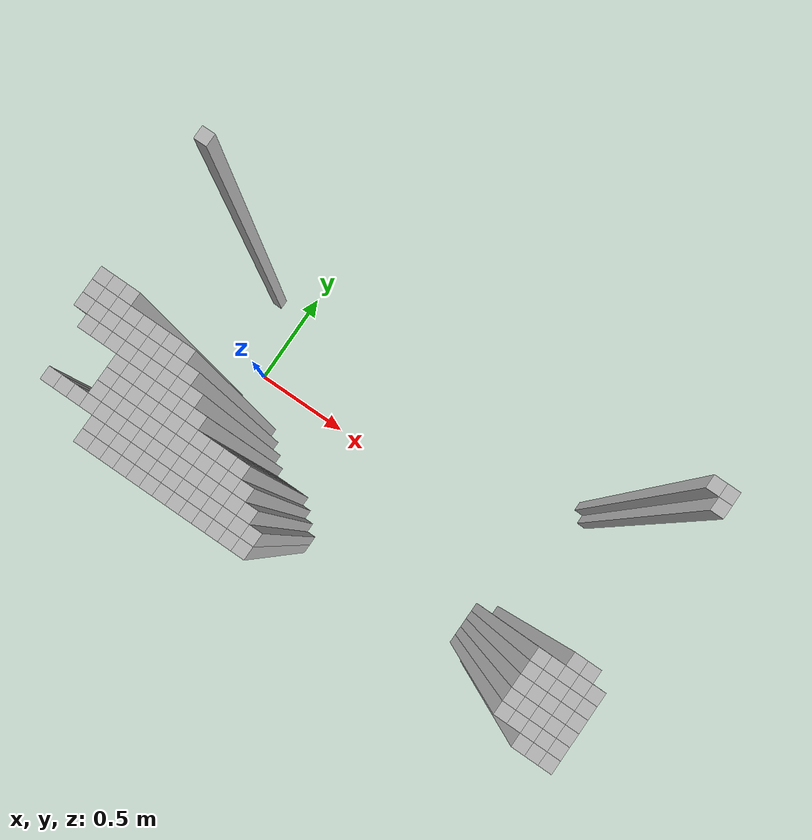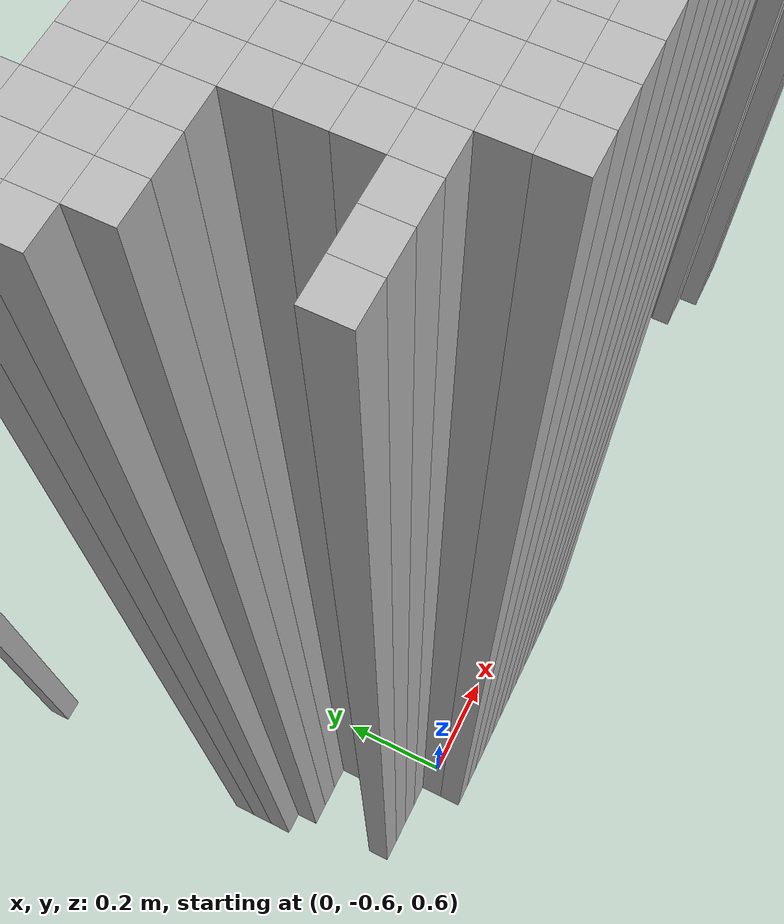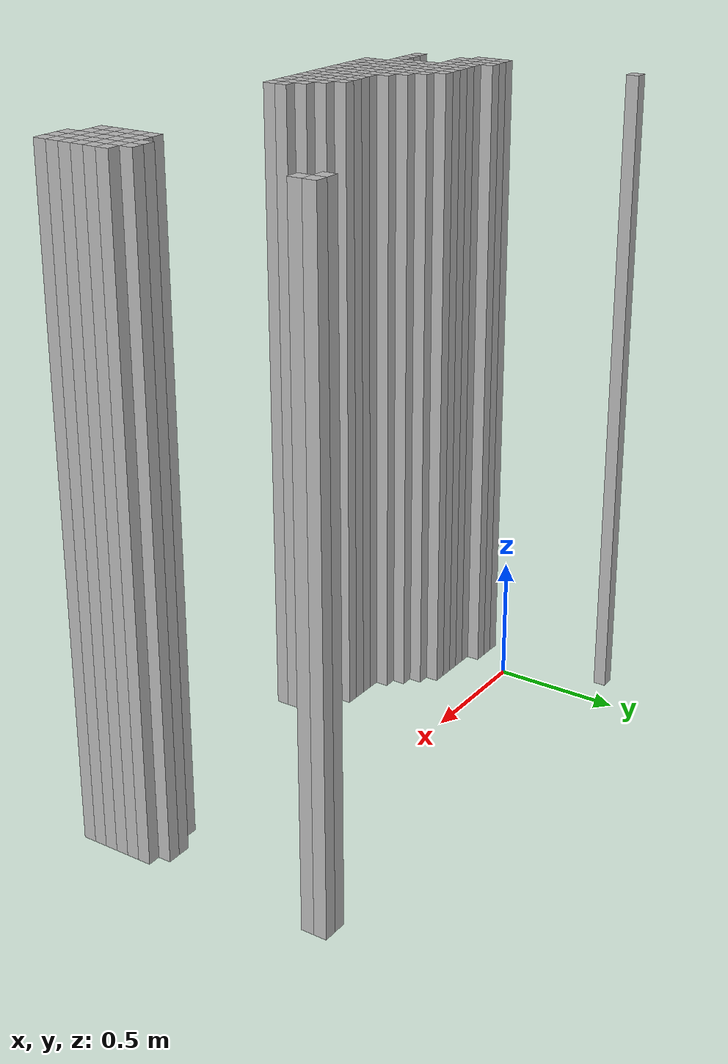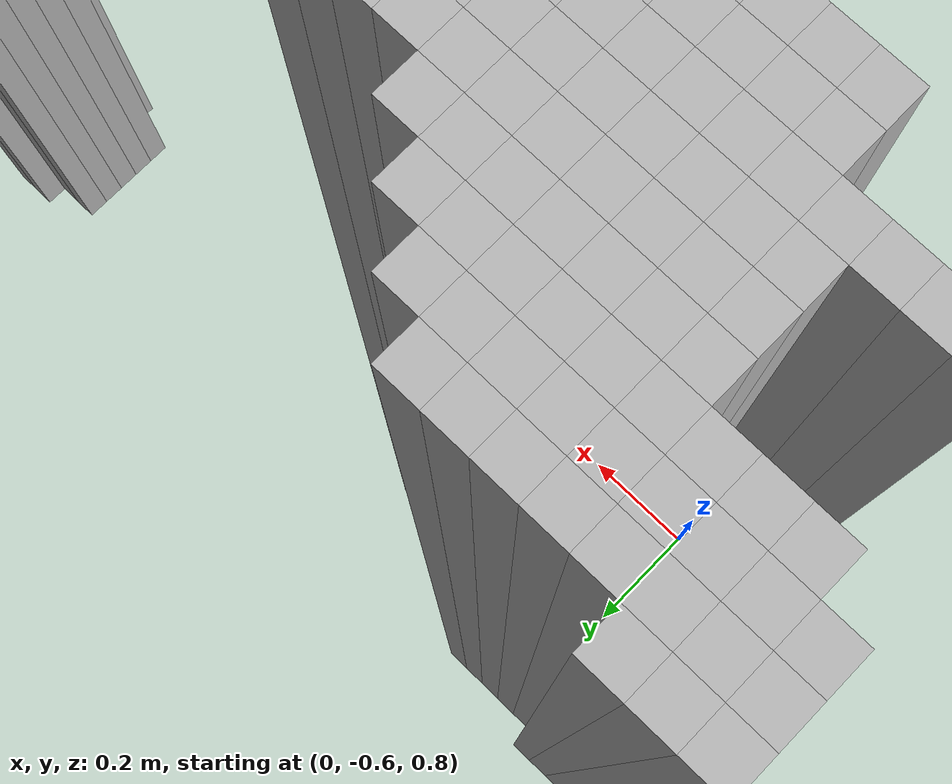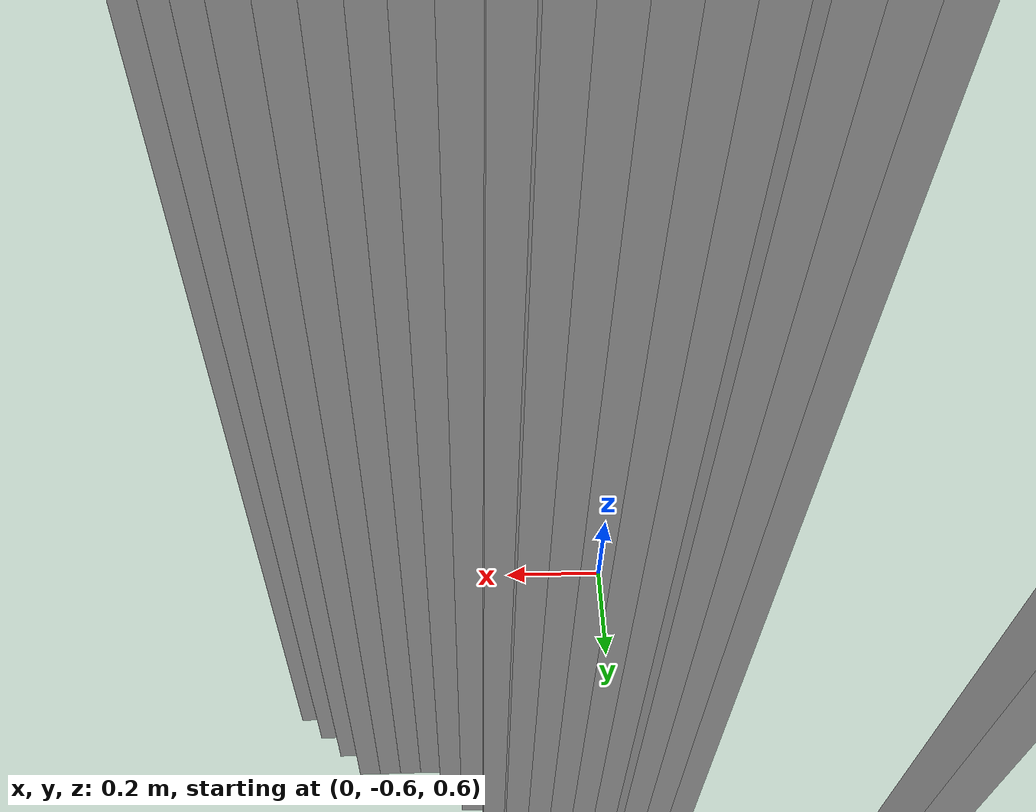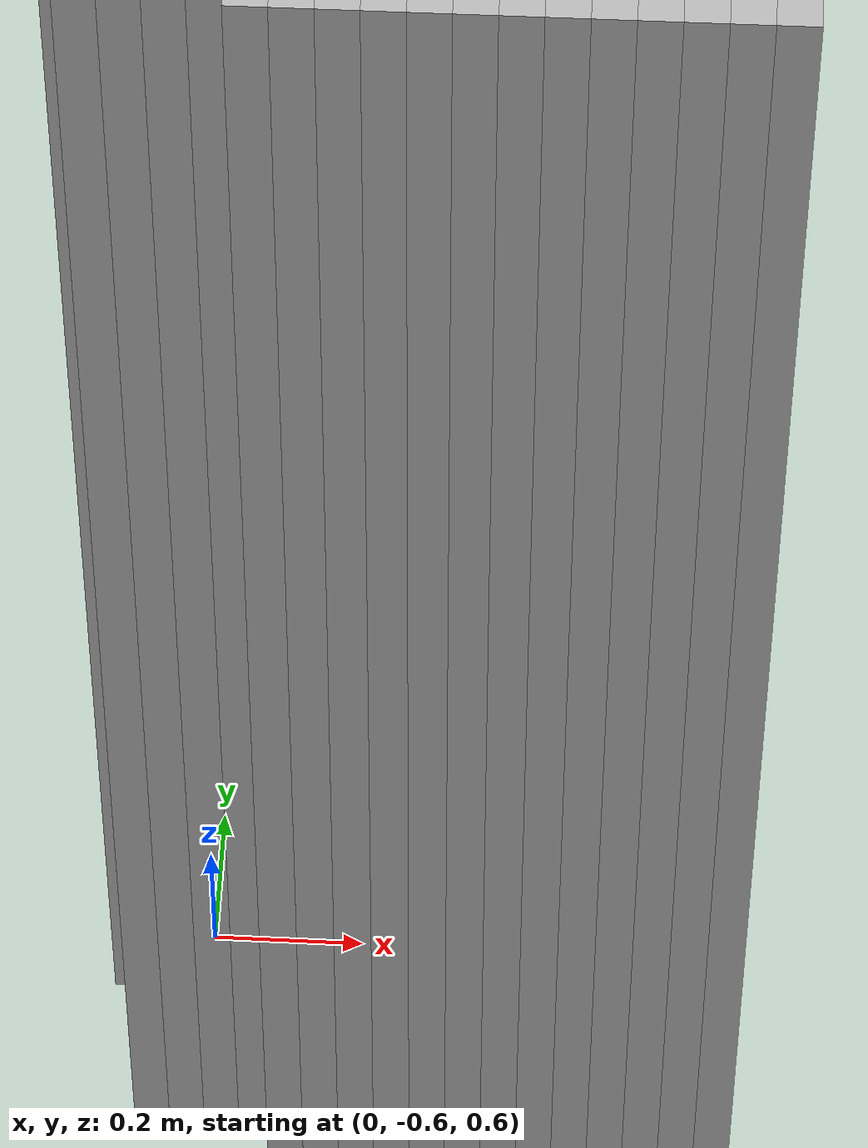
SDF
<sdf version="1.9">
 <world name="map_world">
  <model name="wall_220_146">
   <static>true</static>
   <pose>-0.161 0.380 1.250 0 0 0</pose>
   <link name="link">
    <collision name="collision"><geometry><box><size>0.050 0.050 2.500</size></box></geometry></collision>
    <visual name="visual"><geometry><box><size>0.050 0.050 2.500</size></box></geometry></visual>
   </link>
  </model>
  <model name="wall_259_146">
   <static>true</static>
   <pose>1.789 0.380 1.250 0 0 0</pose>
   <link name="link">
    <collision name="collision"><geometry><box><size>0.050 0.050 2.500</size></box></geometry></collision>
    <visual name="visual"><geometry><box><size>0.050 0.050 2.500</size></box></geometry></visual>
   </link>
  </model>
  <model name="wall_260_146">
   <static>true</static>
   <pose>1.839 0.380 1.250 0 0 0</pose>
   <link name="link">
    <collision name="collision"><geometry><box><size>0.050 0.050 2.500</size></box></geometry></collision>
    <visual name="visual"><geometry><box><size>0.050 0.050 2.500</size></box></geometry></visual>
   </link>
  </model>
  <model name="wall_260_147">
   <static>true</static>
   <pose>1.839 0.330 1.250 0 0 0</pose>
   <link name="link">
    <collision name="collision"><geometry><box><size>0.050 0.050 2.500</size></box></geometry></collision>
    <visual name="visual"><geometry><box><size>0.050 0.050 2.500</size></box></geometry></visual>
   </link>
  </model>
  <model name="wall_220_157">
   <static>true</static>
   <pose>-0.161 -0.170 1.250 0 0 0</pose>
   <link name="link">
    <collision name="collision"><geometry><box><size>0.050 0.050 2.500</size></box></geometry></collision>
    <visual name="visual"><geometry><box><size>0.050 0.050 2.500</size></box></geometry></visual>
   </link>
  </model>
  <model name="wall_221_157">
   <static>true</static>
   <pose>-0.111 -0.170 1.250 0 0 0</pose>
   <link name="link">
    <collision name="collision"><geometry><box><size>0.050 0.050 2.500</size></box></geometry></collision>
    <visual name="visual"><geometry><box><size>0.050 0.050 2.500</size></box></geometry></visual>
   </link>
  </model>
  <model name="wall_222_157">
   <static>true</static>
   <pose>-0.061 -0.170 1.250 0 0 0</pose>
   <link name="link">
    <collision name="collision"><geometry><box><size>0.050 0.050 2.500</size></box></geometry></collision>
    <visual name="visual"><geometry><box><size>0.050 0.050 2.500</size></box></geometry></visual>
   </link>
  </model>
  <model name="wall_220_158">
   <static>true</static>
   <pose>-0.161 -0.220 1.250 0 0 0</pose>
   <link name="link">
    <collision name="collision"><geometry><box><size>0.050 0.050 2.500</size></box></geometry></collision>
    <visual name="visual"><geometry><box><size>0.050 0.050 2.500</size></box></geometry></visual>
   </link>
  </model>
  <model name="wall_221_158">
   <static>true</static>
   <pose>-0.111 -0.220 1.250 0 0 0</pose>
   <link name="link">
    <collision name="collision"><geometry><box><size>0.050 0.050 2.500</size></box></geometry></collision>
    <visual name="visual"><geometry><box><size>0.050 0.050 2.500</size></box></geometry></visual>
   </link>
  </model>
  <model name="wall_222_158">
   <static>true</static>
   <pose>-0.061 -0.220 1.250 0 0 0</pose>
   <link name="link">
    <collision name="collision"><geometry><box><size>0.050 0.050 2.500</size></box></geometry></collision>
    <visual name="visual"><geometry><box><size>0.050 0.050 2.500</size></box></geometry></visual>
   </link>
  </model>
  <model name="wall_223_158">
   <static>true</static>
   <pose>-0.011 -0.220 1.250 0 0 0</pose>
   <link name="link">
    <collision name="collision"><geometry><box><size>0.050 0.050 2.500</size></box></geometry></collision>
    <visual name="visual"><geometry><box><size>0.050 0.050 2.500</size></box></geometry></visual>
   </link>
  </model>
  <model name="wall_224_158">
   <static>true</static>
   <pose>0.039 -0.220 1.250 0 0 0</pose>
   <link name="link">
    <collision name="collision"><geometry><box><size>0.050 0.050 2.500</size></box></geometry></collision>
    <visual name="visual"><geometry><box><size>0.050 0.050 2.500</size></box></geometry></visual>
   </link>
  </model>
  <model name="wall_225_158">
   <static>true</static>
   <pose>0.089 -0.220 1.250 0 0 0</pose>
   <link name="link">
    <collision name="collision"><geometry><box><size>0.050 0.050 2.500</size></box></geometry></collision>
    <visual name="visual"><geometry><box><size>0.050 0.050 2.500</size></box></geometry></visual>
   </link>
  </model>
  <model name="wall_226_158">
   <static>true</static>
   <pose>0.139 -0.220 1.250 0 0 0</pose>
   <link name="link">
    <collision name="collision"><geometry><box><size>0.050 0.050 2.500</size></box></geometry></collision>
    <visual name="visual"><geometry><box><size>0.050 0.050 2.500</size></box></geometry></visual>
   </link>
  </model>
  <model name="wall_227_158">
   <static>true</static>
   <pose>0.189 -0.220 1.250 0 0 0</pose>
   <link name="link">
    <collision name="collision"><geometry><box><size>0.050 0.050 2.500</size></box></geometry></collision>
    <visual name="visual"><geometry><box><size>0.050 0.050 2.500</size></box></geometry></visual>
   </link>
  </model>
  <model name="wall_220_159">
   <static>true</static>
   <pose>-0.161 -0.270 1.250 0 0 0</pose>
   <link name="link">
    <collision name="collision"><geometry><box><size>0.050 0.050 2.500</size></box></geometry></collision>
    <visual name="visual"><geometry><box><size>0.050 0.050 2.500</size></box></geometry></visual>
   </link>
  </model>
  <model name="wall_221_159">
   <static>true</static>
   <pose>-0.111 -0.270 1.250 0 0 0</pose>
   <link name="link">
    <collision name="collision"><geometry><box><size>0.050 0.050 2.500</size></box></geometry></collision>
    <visual name="visual"><geometry><box><size>0.050 0.050 2.500</size></box></geometry></visual>
   </link>
  </model>
  <model name="wall_222_159">
   <static>true</static>
   <pose>-0.061 -0.270 1.250 0 0 0</pose>
   <link name="link">
    <collision name="collision"><geometry><box><size>0.050 0.050 2.500</size></box></geometry></collision>
    <visual name="visual"><geometry><box><size>0.050 0.050 2.500</size></box></geometry></visual>
   </link>
  </model>
  <model name="wall_223_159">
   <static>true</static>
   <pose>-0.011 -0.270 1.250 0 0 0</pose>
   <link name="link">
    <collision name="collision"><geometry><box><size>0.050 0.050 2.500</size></box></geometry></collision>
    <visual name="visual"><geometry><box><size>0.050 0.050 2.500</size></box></geometry></visual>
   </link>
  </model>
  <model name="wall_224_159">
   <static>true</static>
   <pose>0.039 -0.270 1.250 0 0 0</pose>
   <link name="link">
    <collision name="collision"><geometry><box><size>0.050 0.050 2.500</size></box></geometry></collision>
    <visual name="visual"><geometry><box><size>0.050 0.050 2.500</size></box></geometry></visual>
   </link>
  </model>
  <model name="wall_225_159">
   <static>true</static>
   <pose>0.089 -0.270 1.250 0 0 0</pose>
   <link name="link">
    <collision name="collision"><geometry><box><size>0.050 0.050 2.500</size></box></geometry></collision>
    <visual name="visual"><geometry><box><size>0.050 0.050 2.500</size></box></geometry></visual>
   </link>
  </model>
  <model name="wall_226_159">
   <static>true</static>
   <pose>0.139 -0.270 1.250 0 0 0</pose>
   <link name="link">
    <collision name="collision"><geometry><box><size>0.050 0.050 2.500</size></box></geometry></collision>
    <visual name="visual"><geometry><box><size>0.050 0.050 2.500</size></box></geometry></visual>
   </link>
  </model>
  <model name="wall_227_159">
   <static>true</static>
   <pose>0.189 -0.270 1.250 0 0 0</pose>
   <link name="link">
    <collision name="collision"><geometry><box><size>0.050 0.050 2.500</size></box></geometry></collision>
    <visual name="visual"><geometry><box><size>0.050 0.050 2.500</size></box></geometry></visual>
   </link>
  </model>
  <model name="wall_228_159">
   <static>true</static>
   <pose>0.239 -0.270 1.250 0 0 0</pose>
   <link name="link">
    <collision name="collision"><geometry><box><size>0.050 0.050 2.500</size></box></geometry></collision>
    <visual name="visual"><geometry><box><size>0.050 0.050 2.500</size></box></geometry></visual>
   </link>
  </model>
  <model name="wall_221_160">
   <static>true</static>
   <pose>-0.111 -0.320 1.250 0 0 0</pose>
   <link name="link">
    <collision name="collision"><geometry><box><size>0.050 0.050 2.500</size></box></geometry></collision>
    <visual name="visual"><geometry><box><size>0.050 0.050 2.500</size></box></geometry></visual>
   </link>
  </model>
  <model name="wall_222_160">
   <static>true</static>
   <pose>-0.061 -0.320 1.250 0 0 0</pose>
   <link name="link">
    <collision name="collision"><geometry><box><size>0.050 0.050 2.500</size></box></geometry></collision>
    <visual name="visual"><geometry><box><size>0.050 0.050 2.500</size></box></geometry></visual>
   </link>
  </model>
  <model name="wall_223_160">
   <static>true</static>
   <pose>-0.011 -0.320 1.250 0 0 0</pose>
   <link name="link">
    <collision name="collision"><geometry><box><size>0.050 0.050 2.500</size></box></geometry></collision>
    <visual name="visual"><geometry><box><size>0.050 0.050 2.500</size></box></geometry></visual>
   </link>
  </model>
  <model name="wall_224_160">
   <static>true</static>
   <pose>0.039 -0.320 1.250 0 0 0</pose>
   <link name="link">
    <collision name="collision"><geometry><box><size>0.050 0.050 2.500</size></box></geometry></collision>
    <visual name="visual"><geometry><box><size>0.050 0.050 2.500</size></box></geometry></visual>
   </link>
  </model>
  <model name="wall_225_160">
   <static>true</static>
   <pose>0.089 -0.320 1.250 0 0 0</pose>
   <link name="link">
    <collision name="collision"><geometry><box><size>0.050 0.050 2.500</size></box></geometry></collision>
    <visual name="visual"><geometry><box><size>0.050 0.050 2.500</size></box></geometry></visual>
   </link>
  </model>
  <model name="wall_226_160">
   <static>true</static>
   <pose>0.139 -0.320 1.250 0 0 0</pose>
   <link name="link">
    <collision name="collision"><geometry><box><size>0.050 0.050 2.500</size></box></geometry></collision>
    <visual name="visual"><geometry><box><size>0.050 0.050 2.500</size></box></geometry></visual>
   </link>
  </model>
  <model name="wall_227_160">
   <static>true</static>
   <pose>0.189 -0.320 1.250 0 0 0</pose>
   <link name="link">
    <collision name="collision"><geometry><box><size>0.050 0.050 2.500</size></box></geometry></collision>
    <visual name="visual"><geometry><box><size>0.050 0.050 2.500</size></box></geometry></visual>
   </link>
  </model>
  <model name="wall_228_160">
   <static>true</static>
   <pose>0.239 -0.320 1.250 0 0 0</pose>
   <link name="link">
    <collision name="collision"><geometry><box><size>0.050 0.050 2.500</size></box></geometry></collision>
    <visual name="visual"><geometry><box><size>0.050 0.050 2.500</size></box></geometry></visual>
   </link>
  </model>
  <model name="wall_229_160">
   <static>true</static>
   <pose>0.289 -0.320 1.250 0 0 0</pose>
   <link name="link">
    <collision name="collision"><geometry><box><size>0.050 0.050 2.500</size></box></geometry></collision>
    <visual name="visual"><geometry><box><size>0.050 0.050 2.500</size></box></geometry></visual>
   </link>
  </model>
  <model name="wall_258_160">
   <static>true</static>
   <pose>1.739 -0.320 1.250 0 0 0</pose>
   <link name="link">
    <collision name="collision"><geometry><box><size>0.050 0.050 2.500</size></box></geometry></collision>
    <visual name="visual"><geometry><box><size>0.050 0.050 2.500</size></box></geometry></visual>
   </link>
  </model>
  <model name="wall_259_160">
   <static>true</static>
   <pose>1.789 -0.320 1.250 0 0 0</pose>
   <link name="link">
    <collision name="collision"><geometry><box><size>0.050 0.050 2.500</size></box></geometry></collision>
    <visual name="visual"><geometry><box><size>0.050 0.050 2.500</size></box></geometry></visual>
   </link>
  </model>
  <model name="wall_224_161">
   <static>true</static>
   <pose>0.039 -0.370 1.250 0 0 0</pose>
   <link name="link">
    <collision name="collision"><geometry><box><size>0.050 0.050 2.500</size></box></geometry></collision>
    <visual name="visual"><geometry><box><size>0.050 0.050 2.500</size></box></geometry></visual>
   </link>
  </model>
  <model name="wall_225_161">
   <static>true</static>
   <pose>0.089 -0.370 1.250 0 0 0</pose>
   <link name="link">
    <collision name="collision"><geometry><box><size>0.050 0.050 2.500</size></box></geometry></collision>
    <visual name="visual"><geometry><box><size>0.050 0.050 2.500</size></box></geometry></visual>
   </link>
  </model>
  <model name="wall_226_161">
   <static>true</static>
   <pose>0.139 -0.370 1.250 0 0 0</pose>
   <link name="link">
    <collision name="collision"><geometry><box><size>0.050 0.050 2.500</size></box></geometry></collision>
    <visual name="visual"><geometry><box><size>0.050 0.050 2.500</size></box></geometry></visual>
   </link>
  </model>
  <model name="wall_227_161">
   <static>true</static>
   <pose>0.189 -0.370 1.250 0 0 0</pose>
   <link name="link">
    <collision name="collision"><geometry><box><size>0.050 0.050 2.500</size></box></geometry></collision>
    <visual name="visual"><geometry><box><size>0.050 0.050 2.500</size></box></geometry></visual>
   </link>
  </model>
  <model name="wall_228_161">
   <static>true</static>
   <pose>0.239 -0.370 1.250 0 0 0</pose>
   <link name="link">
    <collision name="collision"><geometry><box><size>0.050 0.050 2.500</size></box></geometry></collision>
    <visual name="visual"><geometry><box><size>0.050 0.050 2.500</size></box></geometry></visual>
   </link>
  </model>
  <model name="wall_229_161">
   <static>true</static>
   <pose>0.289 -0.370 1.250 0 0 0</pose>
   <link name="link">
    <collision name="collision"><geometry><box><size>0.050 0.050 2.500</size></box></geometry></collision>
    <visual name="visual"><geometry><box><size>0.050 0.050 2.500</size></box></geometry></visual>
   </link>
  </model>
  <model name="wall_230_161">
   <static>true</static>
   <pose>0.339 -0.370 1.250 0 0 0</pose>
   <link name="link">
    <collision name="collision"><geometry><box><size>0.050 0.050 2.500</size></box></geometry></collision>
    <visual name="visual"><geometry><box><size>0.050 0.050 2.500</size></box></geometry></visual>
   </link>
  </model>
  <model name="wall_256_161">
   <static>true</static>
   <pose>1.639 -0.370 1.250 0 0 0</pose>
   <link name="link">
    <collision name="collision"><geometry><box><size>0.050 0.050 2.500</size></box></geometry></collision>
    <visual name="visual"><geometry><box><size>0.050 0.050 2.500</size></box></geometry></visual>
   </link>
  </model>
  <model name="wall_257_161">
   <static>true</static>
   <pose>1.689 -0.370 1.250 0 0 0</pose>
   <link name="link">
    <collision name="collision"><geometry><box><size>0.050 0.050 2.500</size></box></geometry></collision>
    <visual name="visual"><geometry><box><size>0.050 0.050 2.500</size></box></geometry></visual>
   </link>
  </model>
  <model name="wall_258_161">
   <static>true</static>
   <pose>1.739 -0.370 1.250 0 0 0</pose>
   <link name="link">
    <collision name="collision"><geometry><box><size>0.050 0.050 2.500</size></box></geometry></collision>
    <visual name="visual"><geometry><box><size>0.050 0.050 2.500</size></box></geometry></visual>
   </link>
  </model>
  <model name="wall_259_161">
   <static>true</static>
   <pose>1.789 -0.370 1.250 0 0 0</pose>
   <link name="link">
    <collision name="collision"><geometry><box><size>0.050 0.050 2.500</size></box></geometry></collision>
    <visual name="visual"><geometry><box><size>0.050 0.050 2.500</size></box></geometry></visual>
   </link>
  </model>
  <model name="wall_260_161">
   <static>true</static>
   <pose>1.839 -0.370 1.250 0 0 0</pose>
   <link name="link">
    <collision name="collision"><geometry><box><size>0.050 0.050 2.500</size></box></geometry></collision>
    <visual name="visual"><geometry><box><size>0.050 0.050 2.500</size></box></geometry></visual>
   </link>
  </model>
  <model name="wall_224_162">
   <static>true</static>
   <pose>0.039 -0.420 1.250 0 0 0</pose>
   <link name="link">
    <collision name="collision"><geometry><box><size>0.050 0.050 2.500</size></box></geometry></collision>
    <visual name="visual"><geometry><box><size>0.050 0.050 2.500</size></box></geometry></visual>
   </link>
  </model>
  <model name="wall_225_162">
   <static>true</static>
   <pose>0.089 -0.420 1.250 0 0 0</pose>
   <link name="link">
    <collision name="collision"><geometry><box><size>0.050 0.050 2.500</size></box></geometry></collision>
    <visual name="visual"><geometry><box><size>0.050 0.050 2.500</size></box></geometry></visual>
   </link>
  </model>
  <model name="wall_226_162">
   <static>true</static>
   <pose>0.139 -0.420 1.250 0 0 0</pose>
   <link name="link">
    <collision name="collision"><geometry><box><size>0.050 0.050 2.500</size></box></geometry></collision>
    <visual name="visual"><geometry><box><size>0.050 0.050 2.500</size></box></geometry></visual>
   </link>
  </model>
  <model name="wall_227_162">
   <static>true</static>
   <pose>0.189 -0.420 1.250 0 0 0</pose>
   <link name="link">
    <collision name="collision"><geometry><box><size>0.050 0.050 2.500</size></box></geometry></collision>
    <visual name="visual"><geometry><box><size>0.050 0.050 2.500</size></box></geometry></visual>
   </link>
  </model>
  <model name="wall_228_162">
   <static>true</static>
   <pose>0.239 -0.420 1.250 0 0 0</pose>
   <link name="link">
    <collision name="collision"><geometry><box><size>0.050 0.050 2.500</size></box></geometry></collision>
    <visual name="visual"><geometry><box><size>0.050 0.050 2.500</size></box></geometry></visual>
   </link>
  </model>
  <model name="wall_229_162">
   <static>true</static>
   <pose>0.289 -0.420 1.250 0 0 0</pose>
   <link name="link">
    <collision name="collision"><geometry><box><size>0.050 0.050 2.500</size></box></geometry></collision>
    <visual name="visual"><geometry><box><size>0.050 0.050 2.500</size></box></geometry></visual>
   </link>
  </model>
  <model name="wall_230_162">
   <static>true</static>
   <pose>0.339 -0.420 1.250 0 0 0</pose>
   <link name="link">
    <collision name="collision"><geometry><box><size>0.050 0.050 2.500</size></box></geometry></collision>
    <visual name="visual"><geometry><box><size>0.050 0.050 2.500</size></box></geometry></visual>
   </link>
  </model>
  <model name="wall_231_162">
   <static>true</static>
   <pose>0.389 -0.420 1.250 0 0 0</pose>
   <link name="link">
    <collision name="collision"><geometry><box><size>0.050 0.050 2.500</size></box></geometry></collision>
    <visual name="visual"><geometry><box><size>0.050 0.050 2.500</size></box></geometry></visual>
   </link>
  </model>
  <model name="wall_232_162">
   <static>true</static>
   <pose>0.439 -0.420 1.250 0 0 0</pose>
   <link name="link">
    <collision name="collision"><geometry><box><size>0.050 0.050 2.500</size></box></geometry></collision>
    <visual name="visual"><geometry><box><size>0.050 0.050 2.500</size></box></geometry></visual>
   </link>
  </model>
  <model name="wall_233_162">
   <static>true</static>
   <pose>0.489 -0.420 1.250 0 0 0</pose>
   <link name="link">
    <collision name="collision"><geometry><box><size>0.050 0.050 2.500</size></box></geometry></collision>
    <visual name="visual"><geometry><box><size>0.050 0.050 2.500</size></box></geometry></visual>
   </link>
  </model>
  <model name="wall_234_162">
   <static>true</static>
   <pose>0.539 -0.420 1.250 0 0 0</pose>
   <link name="link">
    <collision name="collision"><geometry><box><size>0.050 0.050 2.500</size></box></geometry></collision>
    <visual name="visual"><geometry><box><size>0.050 0.050 2.500</size></box></geometry></visual>
   </link>
  </model>
  <model name="wall_256_162">
   <static>true</static>
   <pose>1.639 -0.420 1.250 0 0 0</pose>
   <link name="link">
    <collision name="collision"><geometry><box><size>0.050 0.050 2.500</size></box></geometry></collision>
    <visual name="visual"><geometry><box><size>0.050 0.050 2.500</size></box></geometry></visual>
   </link>
  </model>
  <model name="wall_257_162">
   <static>true</static>
   <pose>1.689 -0.420 1.250 0 0 0</pose>
   <link name="link">
    <collision name="collision"><geometry><box><size>0.050 0.050 2.500</size></box></geometry></collision>
    <visual name="visual"><geometry><box><size>0.050 0.050 2.500</size></box></geometry></visual>
   </link>
  </model>
  <model name="wall_258_162">
   <static>true</static>
   <pose>1.739 -0.420 1.250 0 0 0</pose>
   <link name="link">
    <collision name="collision"><geometry><box><size>0.050 0.050 2.500</size></box></geometry></collision>
    <visual name="visual"><geometry><box><size>0.050 0.050 2.500</size></box></geometry></visual>
   </link>
  </model>
  <model name="wall_259_162">
   <static>true</static>
   <pose>1.789 -0.420 1.250 0 0 0</pose>
   <link name="link">
    <collision name="collision"><geometry><box><size>0.050 0.050 2.500</size></box></geometry></collision>
    <visual name="visual"><geometry><box><size>0.050 0.050 2.500</size></box></geometry></visual>
   </link>
  </model>
  <model name="wall_260_162">
   <static>true</static>
   <pose>1.839 -0.420 1.250 0 0 0</pose>
   <link name="link">
    <collision name="collision"><geometry><box><size>0.050 0.050 2.500</size></box></geometry></collision>
    <visual name="visual"><geometry><box><size>0.050 0.050 2.500</size></box></geometry></visual>
   </link>
  </model>
  <model name="wall_224_163">
   <static>true</static>
   <pose>0.039 -0.470 1.250 0 0 0</pose>
   <link name="link">
    <collision name="collision"><geometry><box><size>0.050 0.050 2.500</size></box></geometry></collision>
    <visual name="visual"><geometry><box><size>0.050 0.050 2.500</size></box></geometry></visual>
   </link>
  </model>
  <model name="wall_225_163">
   <static>true</static>
   <pose>0.089 -0.470 1.250 0 0 0</pose>
   <link name="link">
    <collision name="collision"><geometry><box><size>0.050 0.050 2.500</size></box></geometry></collision>
    <visual name="visual"><geometry><box><size>0.050 0.050 2.500</size></box></geometry></visual>
   </link>
  </model>
  <model name="wall_226_163">
   <static>true</static>
   <pose>0.139 -0.470 1.250 0 0 0</pose>
   <link name="link">
    <collision name="collision"><geometry><box><size>0.050 0.050 2.500</size></box></geometry></collision>
    <visual name="visual"><geometry><box><size>0.050 0.050 2.500</size></box></geometry></visual>
   </link>
  </model>
  <model name="wall_227_163">
   <static>true</static>
   <pose>0.189 -0.470 1.250 0 0 0</pose>
   <link name="link">
    <collision name="collision"><geometry><box><size>0.050 0.050 2.500</size></box></geometry></collision>
    <visual name="visual"><geometry><box><size>0.050 0.050 2.500</size></box></geometry></visual>
   </link>
  </model>
  <model name="wall_228_163">
   <static>true</static>
   <pose>0.239 -0.470 1.250 0 0 0</pose>
   <link name="link">
    <collision name="collision"><geometry><box><size>0.050 0.050 2.500</size></box></geometry></collision>
    <visual name="visual"><geometry><box><size>0.050 0.050 2.500</size></box></geometry></visual>
   </link>
  </model>
  <model name="wall_229_163">
   <static>true</static>
   <pose>0.289 -0.470 1.250 0 0 0</pose>
   <link name="link">
    <collision name="collision"><geometry><box><size>0.050 0.050 2.500</size></box></geometry></collision>
    <visual name="visual"><geometry><box><size>0.050 0.050 2.500</size></box></geometry></visual>
   </link>
  </model>
  <model name="wall_230_163">
   <static>true</static>
   <pose>0.339 -0.470 1.250 0 0 0</pose>
   <link name="link">
    <collision name="collision"><geometry><box><size>0.050 0.050 2.500</size></box></geometry></collision>
    <visual name="visual"><geometry><box><size>0.050 0.050 2.500</size></box></geometry></visual>
   </link>
  </model>
  <model name="wall_231_163">
   <static>true</static>
   <pose>0.389 -0.470 1.250 0 0 0</pose>
   <link name="link">
    <collision name="collision"><geometry><box><size>0.050 0.050 2.500</size></box></geometry></collision>
    <visual name="visual"><geometry><box><size>0.050 0.050 2.500</size></box></geometry></visual>
   </link>
  </model>
  <model name="wall_232_163">
   <static>true</static>
   <pose>0.439 -0.470 1.250 0 0 0</pose>
   <link name="link">
    <collision name="collision"><geometry><box><size>0.050 0.050 2.500</size></box></geometry></collision>
    <visual name="visual"><geometry><box><size>0.050 0.050 2.500</size></box></geometry></visual>
   </link>
  </model>
  <model name="wall_233_163">
   <static>true</static>
   <pose>0.489 -0.470 1.250 0 0 0</pose>
   <link name="link">
    <collision name="collision"><geometry><box><size>0.050 0.050 2.500</size></box></geometry></collision>
    <visual name="visual"><geometry><box><size>0.050 0.050 2.500</size></box></geometry></visual>
   </link>
  </model>
  <model name="wall_234_163">
   <static>true</static>
   <pose>0.539 -0.470 1.250 0 0 0</pose>
   <link name="link">
    <collision name="collision"><geometry><box><size>0.050 0.050 2.500</size></box></geometry></collision>
    <visual name="visual"><geometry><box><size>0.050 0.050 2.500</size></box></geometry></visual>
   </link>
  </model>
  <model name="wall_235_163">
   <static>true</static>
   <pose>0.589 -0.470 1.250 0 0 0</pose>
   <link name="link">
    <collision name="collision"><geometry><box><size>0.050 0.050 2.500</size></box></geometry></collision>
    <visual name="visual"><geometry><box><size>0.050 0.050 2.500</size></box></geometry></visual>
   </link>
  </model>
  <model name="wall_256_163">
   <static>true</static>
   <pose>1.639 -0.470 1.250 0 0 0</pose>
   <link name="link">
    <collision name="collision"><geometry><box><size>0.050 0.050 2.500</size></box></geometry></collision>
    <visual name="visual"><geometry><box><size>0.050 0.050 2.500</size></box></geometry></visual>
   </link>
  </model>
  <model name="wall_257_163">
   <static>true</static>
   <pose>1.689 -0.470 1.250 0 0 0</pose>
   <link name="link">
    <collision name="collision"><geometry><box><size>0.050 0.050 2.500</size></box></geometry></collision>
    <visual name="visual"><geometry><box><size>0.050 0.050 2.500</size></box></geometry></visual>
   </link>
  </model>
  <model name="wall_258_163">
   <static>true</static>
   <pose>1.739 -0.470 1.250 0 0 0</pose>
   <link name="link">
    <collision name="collision"><geometry><box><size>0.050 0.050 2.500</size></box></geometry></collision>
    <visual name="visual"><geometry><box><size>0.050 0.050 2.500</size></box></geometry></visual>
   </link>
  </model>
  <model name="wall_259_163">
   <static>true</static>
   <pose>1.789 -0.470 1.250 0 0 0</pose>
   <link name="link">
    <collision name="collision"><geometry><box><size>0.050 0.050 2.500</size></box></geometry></collision>
    <visual name="visual"><geometry><box><size>0.050 0.050 2.500</size></box></geometry></visual>
   </link>
  </model>
  <model name="wall_260_163">
   <static>true</static>
   <pose>1.839 -0.470 1.250 0 0 0</pose>
   <link name="link">
    <collision name="collision"><geometry><box><size>0.050 0.050 2.500</size></box></geometry></collision>
    <visual name="visual"><geometry><box><size>0.050 0.050 2.500</size></box></geometry></visual>
   </link>
  </model>
  <model name="wall_221_164">
   <static>true</static>
   <pose>-0.111 -0.520 1.250 0 0 0</pose>
   <link name="link">
    <collision name="collision"><geometry><box><size>0.050 0.050 2.500</size></box></geometry></collision>
    <visual name="visual"><geometry><box><size>0.050 0.050 2.500</size></box></geometry></visual>
   </link>
  </model>
  <model name="wall_222_164">
   <static>true</static>
   <pose>-0.061 -0.520 1.250 0 0 0</pose>
   <link name="link">
    <collision name="collision"><geometry><box><size>0.050 0.050 2.500</size></box></geometry></collision>
    <visual name="visual"><geometry><box><size>0.050 0.050 2.500</size></box></geometry></visual>
   </link>
  </model>
  <model name="wall_223_164">
   <static>true</static>
   <pose>-0.011 -0.520 1.250 0 0 0</pose>
   <link name="link">
    <collision name="collision"><geometry><box><size>0.050 0.050 2.500</size></box></geometry></collision>
    <visual name="visual"><geometry><box><size>0.050 0.050 2.500</size></box></geometry></visual>
   </link>
  </model>
  <model name="wall_224_164">
   <static>true</static>
   <pose>0.039 -0.520 1.250 0 0 0</pose>
   <link name="link">
    <collision name="collision"><geometry><box><size>0.050 0.050 2.500</size></box></geometry></collision>
    <visual name="visual"><geometry><box><size>0.050 0.050 2.500</size></box></geometry></visual>
   </link>
  </model>
  <model name="wall_225_164">
   <static>true</static>
   <pose>0.089 -0.520 1.250 0 0 0</pose>
   <link name="link">
    <collision name="collision"><geometry><box><size>0.050 0.050 2.500</size></box></geometry></collision>
    <visual name="visual"><geometry><box><size>0.050 0.050 2.500</size></box></geometry></visual>
   </link>
  </model>
  <model name="wall_226_164">
   <static>true</static>
   <pose>0.139 -0.520 1.250 0 0 0</pose>
   <link name="link">
    <collision name="collision"><geometry><box><size>0.050 0.050 2.500</size></box></geometry></collision>
    <visual name="visual"><geometry><box><size>0.050 0.050 2.500</size></box></geometry></visual>
   </link>
  </model>
  <model name="wall_227_164">
   <static>true</static>
   <pose>0.189 -0.520 1.250 0 0 0</pose>
   <link name="link">
    <collision name="collision"><geometry><box><size>0.050 0.050 2.500</size></box></geometry></collision>
    <visual name="visual"><geometry><box><size>0.050 0.050 2.500</size></box></geometry></visual>
   </link>
  </model>
  <model name="wall_228_164">
   <static>true</static>
   <pose>0.239 -0.520 1.250 0 0 0</pose>
   <link name="link">
    <collision name="collision"><geometry><box><size>0.050 0.050 2.500</size></box></geometry></collision>
    <visual name="visual"><geometry><box><size>0.050 0.050 2.500</size></box></geometry></visual>
   </link>
  </model>
  <model name="wall_229_164">
   <static>true</static>
   <pose>0.289 -0.520 1.250 0 0 0</pose>
   <link name="link">
    <collision name="collision"><geometry><box><size>0.050 0.050 2.500</size></box></geometry></collision>
    <visual name="visual"><geometry><box><size>0.050 0.050 2.500</size></box></geometry></visual>
   </link>
  </model>
  <model name="wall_230_164">
   <static>true</static>
   <pose>0.339 -0.520 1.250 0 0 0</pose>
   <link name="link">
    <collision name="collision"><geometry><box><size>0.050 0.050 2.500</size></box></geometry></collision>
    <visual name="visual"><geometry><box><size>0.050 0.050 2.500</size></box></geometry></visual>
   </link>
  </model>
  <model name="wall_231_164">
   <static>true</static>
   <pose>0.389 -0.520 1.250 0 0 0</pose>
   <link name="link">
    <collision name="collision"><geometry><box><size>0.050 0.050 2.500</size></box></geometry></collision>
    <visual name="visual"><geometry><box><size>0.050 0.050 2.500</size></box></geometry></visual>
   </link>
  </model>
  <model name="wall_232_164">
   <static>true</static>
   <pose>0.439 -0.520 1.250 0 0 0</pose>
   <link name="link">
    <collision name="collision"><geometry><box><size>0.050 0.050 2.500</size></box></geometry></collision>
    <visual name="visual"><geometry><box><size>0.050 0.050 2.500</size></box></geometry></visual>
   </link>
  </model>
  <model name="wall_233_164">
   <static>true</static>
   <pose>0.489 -0.520 1.250 0 0 0</pose>
   <link name="link">
    <collision name="collision"><geometry><box><size>0.050 0.050 2.500</size></box></geometry></collision>
    <visual name="visual"><geometry><box><size>0.050 0.050 2.500</size></box></geometry></visual>
   </link>
  </model>
  <model name="wall_234_164">
   <static>true</static>
   <pose>0.539 -0.520 1.250 0 0 0</pose>
   <link name="link">
    <collision name="collision"><geometry><box><size>0.050 0.050 2.500</size></box></geometry></collision>
    <visual name="visual"><geometry><box><size>0.050 0.050 2.500</size></box></geometry></visual>
   </link>
  </model>
  <model name="wall_235_164">
   <static>true</static>
   <pose>0.589 -0.520 1.250 0 0 0</pose>
   <link name="link">
    <collision name="collision"><geometry><box><size>0.050 0.050 2.500</size></box></geometry></collision>
    <visual name="visual"><geometry><box><size>0.050 0.050 2.500</size></box></geometry></visual>
   </link>
  </model>
  <model name="wall_236_164">
   <static>true</static>
   <pose>0.639 -0.520 1.250 0 0 0</pose>
   <link name="link">
    <collision name="collision"><geometry><box><size>0.050 0.050 2.500</size></box></geometry></collision>
    <visual name="visual"><geometry><box><size>0.050 0.050 2.500</size></box></geometry></visual>
   </link>
  </model>
  <model name="wall_256_164">
   <static>true</static>
   <pose>1.639 -0.520 1.250 0 0 0</pose>
   <link name="link">
    <collision name="collision"><geometry><box><size>0.050 0.050 2.500</size></box></geometry></collision>
    <visual name="visual"><geometry><box><size>0.050 0.050 2.500</size></box></geometry></visual>
   </link>
  </model>
  <model name="wall_257_164">
   <static>true</static>
   <pose>1.689 -0.520 1.250 0 0 0</pose>
   <link name="link">
    <collision name="collision"><geometry><box><size>0.050 0.050 2.500</size></box></geometry></collision>
    <visual name="visual"><geometry><box><size>0.050 0.050 2.500</size></box></geometry></visual>
   </link>
  </model>
  <model name="wall_258_164">
   <static>true</static>
   <pose>1.739 -0.520 1.250 0 0 0</pose>
   <link name="link">
    <collision name="collision"><geometry><box><size>0.050 0.050 2.500</size></box></geometry></collision>
    <visual name="visual"><geometry><box><size>0.050 0.050 2.500</size></box></geometry></visual>
   </link>
  </model>
  <model name="wall_259_164">
   <static>true</static>
   <pose>1.789 -0.520 1.250 0 0 0</pose>
   <link name="link">
    <collision name="collision"><geometry><box><size>0.050 0.050 2.500</size></box></geometry></collision>
    <visual name="visual"><geometry><box><size>0.050 0.050 2.500</size></box></geometry></visual>
   </link>
  </model>
  <model name="wall_260_164">
   <static>true</static>
   <pose>1.839 -0.520 1.250 0 0 0</pose>
   <link name="link">
    <collision name="collision"><geometry><box><size>0.050 0.050 2.500</size></box></geometry></collision>
    <visual name="visual"><geometry><box><size>0.050 0.050 2.500</size></box></geometry></visual>
   </link>
  </model>
  <model name="wall_225_165">
   <static>true</static>
   <pose>0.089 -0.570 1.250 0 0 0</pose>
   <link name="link">
    <collision name="collision"><geometry><box><size>0.050 0.050 2.500</size></box></geometry></collision>
    <visual name="visual"><geometry><box><size>0.050 0.050 2.500</size></box></geometry></visual>
   </link>
  </model>
  <model name="wall_226_165">
   <static>true</static>
   <pose>0.139 -0.570 1.250 0 0 0</pose>
   <link name="link">
    <collision name="collision"><geometry><box><size>0.050 0.050 2.500</size></box></geometry></collision>
    <visual name="visual"><geometry><box><size>0.050 0.050 2.500</size></box></geometry></visual>
   </link>
  </model>
  <model name="wall_227_165">
   <static>true</static>
   <pose>0.189 -0.570 1.250 0 0 0</pose>
   <link name="link">
    <collision name="collision"><geometry><box><size>0.050 0.050 2.500</size></box></geometry></collision>
    <visual name="visual"><geometry><box><size>0.050 0.050 2.500</size></box></geometry></visual>
   </link>
  </model>
  <model name="wall_228_165">
   <static>true</static>
   <pose>0.239 -0.570 1.250 0 0 0</pose>
   <link name="link">
    <collision name="collision"><geometry><box><size>0.050 0.050 2.500</size></box></geometry></collision>
    <visual name="visual"><geometry><box><size>0.050 0.050 2.500</size></box></geometry></visual>
   </link>
  </model>
  <model name="wall_229_165">
   <static>true</static>
   <pose>0.289 -0.570 1.250 0 0 0</pose>
   <link name="link">
    <collision name="collision"><geometry><box><size>0.050 0.050 2.500</size></box></geometry></collision>
    <visual name="visual"><geometry><box><size>0.050 0.050 2.500</size></box></geometry></visual>
   </link>
  </model>
  <model name="wall_230_165">
   <static>true</static>
   <pose>0.339 -0.570 1.250 0 0 0</pose>
   <link name="link">
    <collision name="collision"><geometry><box><size>0.050 0.050 2.500</size></box></geometry></collision>
    <visual name="visual"><geometry><box><size>0.050 0.050 2.500</size></box></geometry></visual>
   </link>
  </model>
  <model name="wall_231_165">
   <static>true</static>
   <pose>0.389 -0.570 1.250 0 0 0</pose>
   <link name="link">
    <collision name="collision"><geometry><box><size>0.050 0.050 2.500</size></box></geometry></collision>
    <visual name="visual"><geometry><box><size>0.050 0.050 2.500</size></box></geometry></visual>
   </link>
  </model>
  <model name="wall_232_165">
   <static>true</static>
   <pose>0.439 -0.570 1.250 0 0 0</pose>
   <link name="link">
    <collision name="collision"><geometry><box><size>0.050 0.050 2.500</size></box></geometry></collision>
    <visual name="visual"><geometry><box><size>0.050 0.050 2.500</size></box></geometry></visual>
   </link>
  </model>
  <model name="wall_233_165">
   <static>true</static>
   <pose>0.489 -0.570 1.250 0 0 0</pose>
   <link name="link">
    <collision name="collision"><geometry><box><size>0.050 0.050 2.500</size></box></geometry></collision>
    <visual name="visual"><geometry><box><size>0.050 0.050 2.500</size></box></geometry></visual>
   </link>
  </model>
  <model name="wall_234_165">
   <static>true</static>
   <pose>0.539 -0.570 1.250 0 0 0</pose>
   <link name="link">
    <collision name="collision"><geometry><box><size>0.050 0.050 2.500</size></box></geometry></collision>
    <visual name="visual"><geometry><box><size>0.050 0.050 2.500</size></box></geometry></visual>
   </link>
  </model>
  <model name="wall_235_165">
   <static>true</static>
   <pose>0.589 -0.570 1.250 0 0 0</pose>
   <link name="link">
    <collision name="collision"><geometry><box><size>0.050 0.050 2.500</size></box></geometry></collision>
    <visual name="visual"><geometry><box><size>0.050 0.050 2.500</size></box></geometry></visual>
   </link>
  </model>
  <model name="wall_236_165">
   <static>true</static>
   <pose>0.639 -0.570 1.250 0 0 0</pose>
   <link name="link">
    <collision name="collision"><geometry><box><size>0.050 0.050 2.500</size></box></geometry></collision>
    <visual name="visual"><geometry><box><size>0.050 0.050 2.500</size></box></geometry></visual>
   </link>
  </model>
  <model name="wall_237_165">
   <static>true</static>
   <pose>0.689 -0.570 1.250 0 0 0</pose>
   <link name="link">
    <collision name="collision"><geometry><box><size>0.050 0.050 2.500</size></box></geometry></collision>
    <visual name="visual"><geometry><box><size>0.050 0.050 2.500</size></box></geometry></visual>
   </link>
  </model>
  <model name="wall_256_165">
   <static>true</static>
   <pose>1.639 -0.570 1.250 0 0 0</pose>
   <link name="link">
    <collision name="collision"><geometry><box><size>0.050 0.050 2.500</size></box></geometry></collision>
    <visual name="visual"><geometry><box><size>0.050 0.050 2.500</size></box></geometry></visual>
   </link>
  </model>
  <model name="wall_257_165">
   <static>true</static>
   <pose>1.689 -0.570 1.250 0 0 0</pose>
   <link name="link">
    <collision name="collision"><geometry><box><size>0.050 0.050 2.500</size></box></geometry></collision>
    <visual name="visual"><geometry><box><size>0.050 0.050 2.500</size></box></geometry></visual>
   </link>
  </model>
  <model name="wall_258_165">
   <static>true</static>
   <pose>1.739 -0.570 1.250 0 0 0</pose>
   <link name="link">
    <collision name="collision"><geometry><box><size>0.050 0.050 2.500</size></box></geometry></collision>
    <visual name="visual"><geometry><box><size>0.050 0.050 2.500</size></box></geometry></visual>
   </link>
  </model>
  <model name="wall_259_165">
   <static>true</static>
   <pose>1.789 -0.570 1.250 0 0 0</pose>
   <link name="link">
    <collision name="collision"><geometry><box><size>0.050 0.050 2.500</size></box></geometry></collision>
    <visual name="visual"><geometry><box><size>0.050 0.050 2.500</size></box></geometry></visual>
   </link>
  </model>
  <model name="wall_260_165">
   <static>true</static>
   <pose>1.839 -0.570 1.250 0 0 0</pose>
   <link name="link">
    <collision name="collision"><geometry><box><size>0.050 0.050 2.500</size></box></geometry></collision>
    <visual name="visual"><geometry><box><size>0.050 0.050 2.500</size></box></geometry></visual>
   </link>
  </model>
  <model name="wall_225_166">
   <static>true</static>
   <pose>0.089 -0.620 1.250 0 0 0</pose>
   <link name="link">
    <collision name="collision"><geometry><box><size>0.050 0.050 2.500</size></box></geometry></collision>
    <visual name="visual"><geometry><box><size>0.050 0.050 2.500</size></box></geometry></visual>
   </link>
  </model>
  <model name="wall_226_166">
   <static>true</static>
   <pose>0.139 -0.620 1.250 0 0 0</pose>
   <link name="link">
    <collision name="collision"><geometry><box><size>0.050 0.050 2.500</size></box></geometry></collision>
    <visual name="visual"><geometry><box><size>0.050 0.050 2.500</size></box></geometry></visual>
   </link>
  </model>
  <model name="wall_227_166">
   <static>true</static>
   <pose>0.189 -0.620 1.250 0 0 0</pose>
   <link name="link">
    <collision name="collision"><geometry><box><size>0.050 0.050 2.500</size></box></geometry></collision>
    <visual name="visual"><geometry><box><size>0.050 0.050 2.500</size></box></geometry></visual>
   </link>
  </model>
  <model name="wall_228_166">
   <static>true</static>
   <pose>0.239 -0.620 1.250 0 0 0</pose>
   <link name="link">
    <collision name="collision"><geometry><box><size>0.050 0.050 2.500</size></box></geometry></collision>
    <visual name="visual"><geometry><box><size>0.050 0.050 2.500</size></box></geometry></visual>
   </link>
  </model>
  <model name="wall_229_166">
   <static>true</static>
   <pose>0.289 -0.620 1.250 0 0 0</pose>
   <link name="link">
    <collision name="collision"><geometry><box><size>0.050 0.050 2.500</size></box></geometry></collision>
    <visual name="visual"><geometry><box><size>0.050 0.050 2.500</size></box></geometry></visual>
   </link>
  </model>
  <model name="wall_230_166">
   <static>true</static>
   <pose>0.339 -0.620 1.250 0 0 0</pose>
   <link name="link">
    <collision name="collision"><geometry><box><size>0.050 0.050 2.500</size></box></geometry></collision>
    <visual name="visual"><geometry><box><size>0.050 0.050 2.500</size></box></geometry></visual>
   </link>
  </model>
  <model name="wall_231_166">
   <static>true</static>
   <pose>0.389 -0.620 1.250 0 0 0</pose>
   <link name="link">
    <collision name="collision"><geometry><box><size>0.050 0.050 2.500</size></box></geometry></collision>
    <visual name="visual"><geometry><box><size>0.050 0.050 2.500</size></box></geometry></visual>
   </link>
  </model>
  <model name="wall_232_166">
   <static>true</static>
   <pose>0.439 -0.620 1.250 0 0 0</pose>
   <link name="link">
    <collision name="collision"><geometry><box><size>0.050 0.050 2.500</size></box></geometry></collision>
    <visual name="visual"><geometry><box><size>0.050 0.050 2.500</size></box></geometry></visual>
   </link>
  </model>
  <model name="wall_233_166">
   <static>true</static>
   <pose>0.489 -0.620 1.250 0 0 0</pose>
   <link name="link">
    <collision name="collision"><geometry><box><size>0.050 0.050 2.500</size></box></geometry></collision>
    <visual name="visual"><geometry><box><size>0.050 0.050 2.500</size></box></geometry></visual>
   </link>
  </model>
  <model name="wall_234_166">
   <static>true</static>
   <pose>0.539 -0.620 1.250 0 0 0</pose>
   <link name="link">
    <collision name="collision"><geometry><box><size>0.050 0.050 2.500</size></box></geometry></collision>
    <visual name="visual"><geometry><box><size>0.050 0.050 2.500</size></box></geometry></visual>
   </link>
  </model>
  <model name="wall_235_166">
   <static>true</static>
   <pose>0.589 -0.620 1.250 0 0 0</pose>
   <link name="link">
    <collision name="collision"><geometry><box><size>0.050 0.050 2.500</size></box></geometry></collision>
    <visual name="visual"><geometry><box><size>0.050 0.050 2.500</size></box></geometry></visual>
   </link>
  </model>
  <model name="wall_236_166">
   <static>true</static>
   <pose>0.639 -0.620 1.250 0 0 0</pose>
   <link name="link">
    <collision name="collision"><geometry><box><size>0.050 0.050 2.500</size></box></geometry></collision>
    <visual name="visual"><geometry><box><size>0.050 0.050 2.500</size></box></geometry></visual>
   </link>
  </model>
  <model name="wall_237_166">
   <static>true</static>
   <pose>0.689 -0.620 1.250 0 0 0</pose>
   <link name="link">
    <collision name="collision"><geometry><box><size>0.050 0.050 2.500</size></box></geometry></collision>
    <visual name="visual"><geometry><box><size>0.050 0.050 2.500</size></box></geometry></visual>
   </link>
  </model>
  <model name="wall_258_166">
   <static>true</static>
   <pose>1.739 -0.620 1.250 0 0 0</pose>
   <link name="link">
    <collision name="collision"><geometry><box><size>0.050 0.050 2.500</size></box></geometry></collision>
    <visual name="visual"><geometry><box><size>0.050 0.050 2.500</size></box></geometry></visual>
   </link>
  </model>
  <model name="wall_259_166">
   <static>true</static>
   <pose>1.789 -0.620 1.250 0 0 0</pose>
   <link name="link">
    <collision name="collision"><geometry><box><size>0.050 0.050 2.500</size></box></geometry></collision>
    <visual name="visual"><geometry><box><size>0.050 0.050 2.500</size></box></geometry></visual>
   </link>
  </model>
  <model name="wall_260_166">
   <static>true</static>
   <pose>1.839 -0.620 1.250 0 0 0</pose>
   <link name="link">
    <collision name="collision"><geometry><box><size>0.050 0.050 2.500</size></box></geometry></collision>
    <visual name="visual"><geometry><box><size>0.050 0.050 2.500</size></box></geometry></visual>
   </link>
  </model>
 </world>
</sdf>
